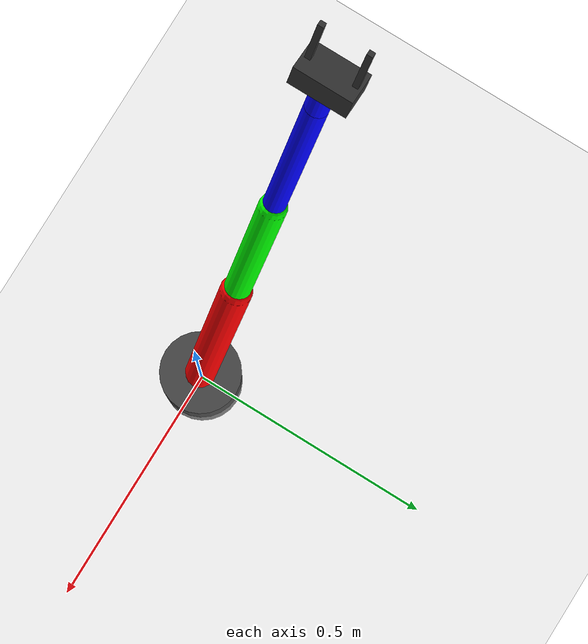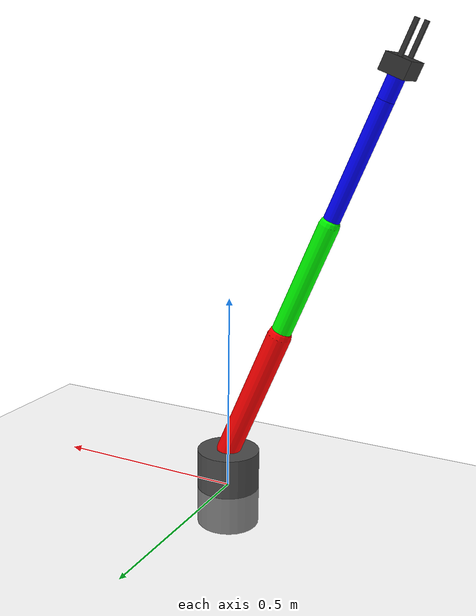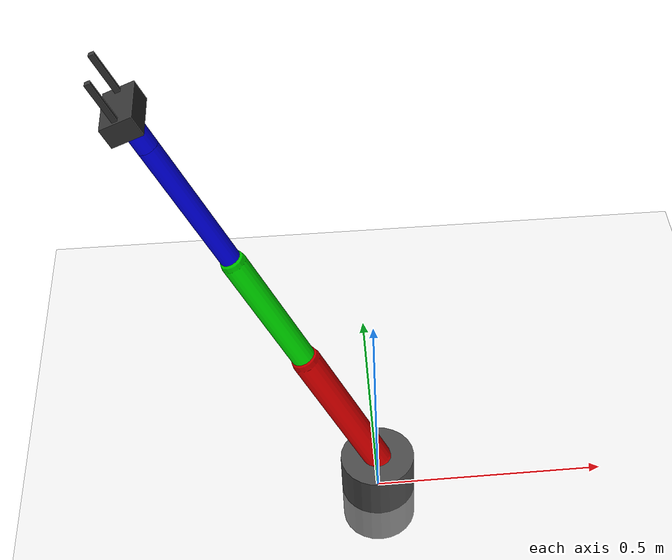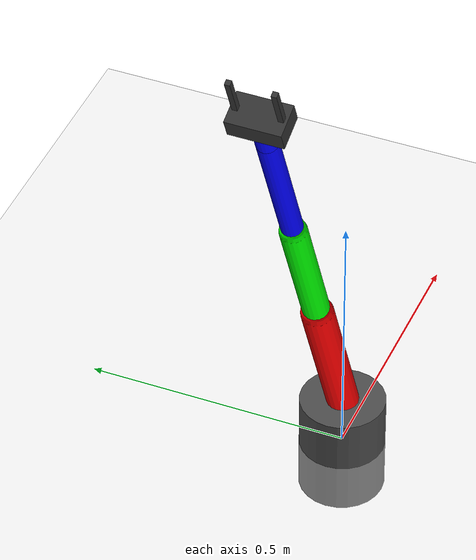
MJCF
<mujoco model="rrr_robot">

    <compiler angle="radian"/>

    <option gravity="0 0 -9.81"/>

    <worldbody>

        <!-- 바닥 -->
        <geom type="plane"
              size="2 2 0.1"
              rgba="0.9 0.9 0.9 1"/>

        <!-- 조명 -->
        <light pos="0 0 3"/>

        <!-- Base -->
        <body name="base" pos="0 0 0">

            <!-- base 시각화 -->
            <joint name="joint1"
                   type="hinge"
                   axis="0 0 1"
                   damping="2"/>

            <geom type="cylinder"
                  size="0.08 0.1"
                  rgba="0.3 0.3 0.3 1"/>

            <!-- Joint 1 : Base Yaw 실제로 우리는 base와 link1간 각도 고정함-->

            <body name="link1" pos="0 0 0.1" euler="0 75 0">

                <!-- 링크1 -->
                <geom type="capsule"
                      fromto="0 0 0 0 0 0.35"
                      size="0.03"
                      rgba="1 0 0 1"/>

                <!-- Joint 2 : Shoulder Pitch -->

                <body name="link2" pos="0 0 0.35">

                    <joint name="joint2"
                           type="hinge"
                           axis="0 1 0"
                           damping="2"/>

                    <!-- 링크2 -->
                    <geom type="capsule"
                          fromto="0 0 0 0 0 0.30"
                          size="0.025"
                          rgba="0 1 0 1"/>

                    <!-- Joint 3 : Elbow Pitch -->

                    <body name="link3" pos="0 0 0.30">

                        <joint name="joint3"
                              type="hinge"
                              axis="0 1 0"
                              damping="2"/>

                        <!-- 링크3 -->
                        <geom type="capsule"
                              fromto="0 0 0 0 0 0.30"
                              size="0.02"
                              rgba="0 0 1 1"/>

                        <body name="link4" pos="0 0 0.30">

                            <joint name="joint4"
                                  type="hinge"
                                  axis="0 1 0"
                                  damping="2"/>

                            <!-- 링크3 -->
                            <geom type="capsule"
                                  fromto="0 0 0 0 0 0.075"
                                  size="0.02"
                                  rgba="0 0 1 1"/>

                            <!-- End Effector -->
                            <site name="ee"
                                  pos="0 0 0.075"
                                  size="0.02"
                                  rgba="1 1 0 1"/>
                          <!-- SIMPLE GRIPPER -->

                          <!--FINGER rotate-->
                            <body name="finger_base" pos="0 0 0.075">

                                <joint name="joint5"
                                      type="hinge"
                                      axis="0 0 -1"
                                      />

                                <!-- finger base -->
                                <geom type="box"
                                      size="0.03 0.05 0.02"
                                      rgba="0.2 0.2 0.2 1"/>
                                <body name="left" pos="0 0.04 0.02">

                                    <joint name="lefty"
                                          type="hinge"
                                          axis="1 0 0"
                                          range="0 0.8"/>

                                    <!-- 손가락 -->
                                    <geom type="box"
                                          pos="0 0 0.04"
                                          size="0.005 0.005 0.04"
                                          rgba="0.2 0.2 0.2 1"/>

                                </body>

                                <body name="right" pos="0 -0.04 0.02">

                                    <joint name="righty"
                                          type="hinge"
                                          axis="-1 0 0"
                                          range="0 0.8"/>

                                    <!-- 손가락 -->
                                    <geom type="box"
                                          pos="0 0 0.04"
                                          size="0.005 0.005 0.04"
                                          rgba="0.2 0.2 0.2 1"/>

                                </body>
                            </body>
                        </body>
                    </body>
                </body>
            </body>
        </body>
    </worldbody>

    <!-- Actuators -->

    <actuator>

        <position joint="joint1"
                  kp="30"/>

        <position joint="joint2"
                  kp="30"/>

        <position joint="joint3"
                  kp="30"/>
        <position joint="joint4" kp="10"/>
        <position joint="joint5" kp="10"/>
        <position joint="lefty" kp ="10"/>
        <position joint="righty" kp ="10"/>
    </actuator>
    <equality>
        <joint joint1="lefty" joint2="righty" polycoef="0 -1 0 0 0"/>
    </equality>
</mujoco>
